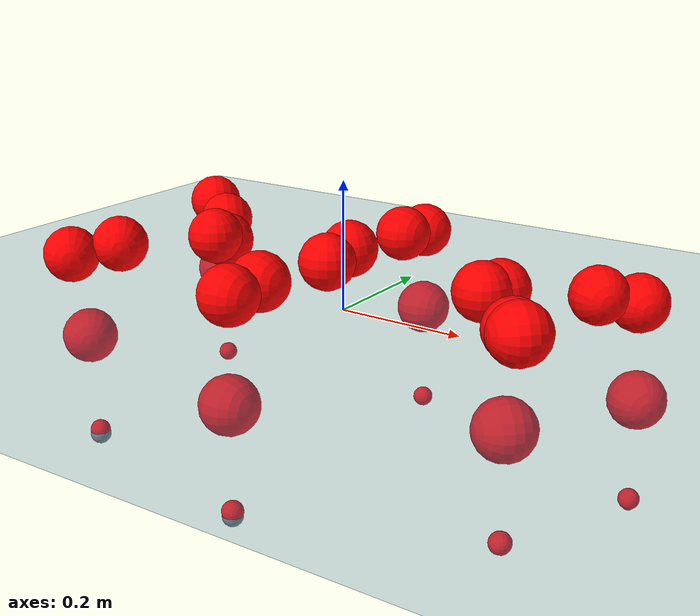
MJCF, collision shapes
<mujoco model="Golem">
  <compiler angle="radian" assetdir="assets" balanceinertia="true" inertiafromgeom="false"/>

  <option timestep="0.005" density="1.2" viscosity="2e-05"/>

  <size nkey="1"/>

  <visual>
    <quality shadowsize="8192"/>
    <map shadowclip="0.5"/>
  </visual>

  <default>
    <default class="/">
      <joint armature="0.01" damping="0.01" frictionloss="0.01"/>
      <geom contype="0" conaffinity="0" group="1" solref="-1000 -80"/>
      <site size="0.01 0.005 0.005" group="5"/>
      <general forcelimited="true" biastype="affine" gainprm="25" biasprm="0 -25 -0.5"/>
      <default class="visual">
        <geom type="mesh" group="2"/>
      </default>
      <default class="collision">
        <geom group="3"/>
      </default>
      <default class="foot">
        <geom size="0.01 0 0" condim="6" group="4" priority="1" solimp="0.015 1 0.01"/>
      </default>
      <default class="reward_collision_sphere">
        <geom group="5" rgba="1 0 0 1"/>
      </default>
    </default>
  </default>

  <asset>
    <texture type="skybox" colorspace="auto" name="//unnamed_texture_0" builtin="gradient" rgb1="0.95 0.95 0.95" rgb2="0.95 0.95 0.95" width="100" height="600"/>
    <texture type="2d" colorspace="auto" name="texplane" builtin="checker" rgb1="0.345 0.575 0.748" rgb2="0.345 0.575 0.748" markrgb="1 1 1" width="512" height="512"/>
    <material name="MatPlane" class="/" texture="texplane" texuniform="true" texrepeat="2 2" specular="0.9"/>
    <mesh name="body" class="/" file="body.stl" scale="0.001 0.001 0.001"/>
    <mesh name="coxa" class="/" file="coxa.stl" scale="0.001 0.001 0.001"/>
    <mesh name="femur" class="/" file="femur.stl" scale="0.001 0.001 0.001"/>
    <mesh name="tibia" class="/" file="tibia.stl" scale="0.001 0.001 0.001"/>
    <mesh name="tarsus" class="/" file="tarsus.stl" scale="0.001 0.001 0.001"/>
  </asset>

  <worldbody>
    <geom name="floor" class="/" size="100 100 0.125" type="plane" group="0" material="MatPlane"/>
    <light name="toplight_shadow" class="/" pos="0 0 5" dir="0.0990148 0.0990148 -0.990148" type="directional" ambient="0.04 0.04 0.04" diffuse="0.55 0.55 0.55" specular="0.12 0.12 0.12"/>
    <light name="toplight_fill" class="/" pos="0 0 5" dir="0.0990148 0.0990148 -0.990148" type="directional" castshadow="false" ambient="0.04 0.04 0.04" diffuse="0.3 0.3 0.3" specular="0.08 0.08 0.08"/>
    <body name="trunk" pos="-0.000577858 0.00599362 0.012501" quat="0.999974 0.00469617 -0.00530951 -0.00154983">
      <inertial pos="-0.00955016 0.00955341 -0.0127797" quat="0.999105 0.0401111 0.0106109 0.00826983" mass="6.62887" diaginertia="0.109043 0.00116351 0.0177066"/>
      <joint name="//unnamed_joint_0" type="free"/>
      <geom name="//unnamed_geom_1" class="/" pos="0 0 0.0720024" quat="1 0 0 0" type="mesh" rgba="0.9 0.9 0.9 1" mesh="body"/>
      <site name="imu" class="/" pos="0.239563 -0.0744705 0.0233177" size="0.0109878"/>
      <camera name="track" class="/" pos="0 -1.23782 0" quat="0.707107 0.707107 0 0" mode="trackcom"/>
      <camera name="ego_camera" class="/" pos="0.201812 0 0.112504" quat="-0.5 -0.5 0.5 0.5"/>
      <body name="coxa_RR" pos="-0.274718 -0.0470493 0.0708379" quat="0.388609 -0.000184477 -0.00648721 -0.92138">
        <inertial pos="-0.0136733 -0.00821711 0.011397" quat="0.998777 0.0277162 -0.0380075 -0.0152377" mass="0.234672" diaginertia="0.108563 0.000795682 0.0151282"/>
        <joint name="coxa_joint_RR" class="/" pos="0 0 0" axis="-0.0195935 0.0419779 -0.998926" range="-3.33477 3.30196" armature="0.00850366" damping="0.0420362" frictionloss="0.00598152"/>
        <geom name="//unnamed_geom_2" class="/" type="mesh" rgba="0.2 0.2 0.2 1" mesh="coxa"/>
        <geom name="//unnamed_geom_3" class="reward_collision_sphere" size="0.0439513" pos="-0.046572 0 0"/>
        <body name="femur_RR" pos="0.103971 0.0095224 -0.00107039" quat="0.498829 -0.493879 0.502186 0.505037">
          <inertial pos="2.07472e-05 -0.0175992 -0.0110897" quat="0.998112 -0.0276985 -0.0509291 -0.0203056" mass="0.300476" diaginertia="0.0918341 0.00122483 0.0217036"/>
          <joint name="femur_joint_RR" class="/" pos="0 0 0" axis="-0.0250347 -0.0143356 -0.999584" range="-3.30828 3.30896" armature="0.00338645" damping="0" frictionloss="0.0109169"/>
          <geom name="//unnamed_geom_4" class="/" type="mesh" rgba="0.9 0.9 0.9 1" mesh="femur"/>
          <geom name="//unnamed_geom_5" class="reward_collision_sphere" size="0.0439513"/>
          <body name="tibia_RR" pos="0.0121846 -0.0763182 -0.00500403" quat="-0.00015854 0.999998 0.0010265 0.00139968">
            <inertial pos="0.00154124 -0.0165649 -0.00635639" quat="0.999999 0.000782139 -0.000923835 0.000679666" mass="0.322347" diaginertia="0.110108 0.00109618 0.0222126"/>
            <joint name="tibia_joint_RR" class="/" pos="0 0 0" axis="0.00598581 0.0804952 0.996737" stiffness="0.0656985" range="-3.47257 3.00378" armature="0.0178496" damping="0.0575783" frictionloss="0.000835687"/>
            <geom name="//unnamed_geom_6" class="/" type="mesh" rgba="0.2 0.2 0.2 1" mesh="tibia"/>
            <geom name="//unnamed_geom_7" class="reward_collision_sphere" size="0.0439513"/>
            <body name="tarsus_RR" pos="0.142102 -0.0138601 0.0161662" quat="0.999985 -0.00115737 0.00512651 0.00181192">
              <inertial pos="0.0831092 0.00658068 -0.013198" quat="0.506677 0.477574 0.539699 0.473209" mass="0.317916" diaginertia="0.0996833 0.00119292 0.016603"/>
              <joint name="tarsus_joint_RR" class="/" pos="0 0 0" axis="0.061853 -0.00840664 0.99805" range="-2.91213 3.23096" armature="0.0161648" damping="0" frictionloss="0.00805079"/>
              <geom name="//unnamed_geom_8" class="/" type="mesh" rgba="0.9 0.9 0.9 1" mesh="tarsus"/>
              <geom name="foot_1" class="foot" size="0.0170389" pos="0.173869 0 0" quat="0 -0.707107 0 0.707107"/>
              <geom name="//unnamed_geom_10" class="reward_collision_sphere" size="0.0439513"/>
              <geom name="//unnamed_geom_11" class="reward_collision_sphere" size="0.0164817" pos="0.166883 0 0"/>
              <site name="foot_1" class="foot" pos="0.173869 0 0" quat="0 -0.707107 0 0.707107" size="0.0109878"/>
            </body>
          </body>
        </body>
      </body>
      <body name="coxa_RM" pos="-0.0181245 -0.0663187 0.0645497" quat="0.707978 -0.00276585 0.00182138 -0.706227">
        <inertial pos="-0.00418378 -0.00102232 0.015058" quat="0.996047 -0.0270358 0.0789527 0.0304138" mass="0.233397" diaginertia="0.0665264 0.00055643 0.0115412"/>
        <joint name="coxa_joint_RM" class="/" pos="0 0 0" axis="0.034455 0.0787709 -0.996297" stiffness="0.0525929" range="-3.13276 3.36034" armature="0.0152113" damping="0" frictionloss="0.00404393"/>
        <geom name="//unnamed_geom_12" class="/" type="mesh" rgba="0.2 0.2 0.2 1" mesh="coxa"/>
        <geom name="//unnamed_geom_13" class="reward_collision_sphere" size="0.0439513" pos="-0.046572 0 0"/>
        <body name="femur_RM" pos="0.106135 -0.00672797 0.010251" quat="0.499471 -0.50036 0.501382 0.498784">
          <inertial pos="-0.00283977 -0.0135604 -0.00213874" quat="0.999558 0.0202501 0.0142731 -0.0164562" mass="0.223876" diaginertia="0.105248 0.000925495 0.0200343"/>
          <joint name="femur_joint_RM" class="/" pos="0 0 0" axis="-0.00679094 -0.0120267 -0.999905" stiffness="0.0694956" range="-3.43088 2.92473" armature="0.00404708" damping="0.000286828" frictionloss="0.00231342"/>
          <geom name="//unnamed_geom_14" class="/" type="mesh" rgba="0.9 0.9 0.9 1" mesh="femur"/>
          <geom name="//unnamed_geom_15" class="reward_collision_sphere" size="0.0439513"/>
          <body name="tibia_RM" pos="0.000320663 -0.0683595 0.000599687" quat="0.000103 0.999997 -0.000937774 -0.00224641">
            <inertial pos="-0.00414143 0.00170739 -0.0140001" quat="0.999468 -0.0296158 -0.00964511 0.0097045" mass="0.211609" diaginertia="0.0942659 0.000934004 0.0205579"/>
            <joint name="tibia_joint_RM" class="/" pos="0 0 0" axis="0.0798148 -0.020291 0.996603" stiffness="0.000756324" range="-3.33274 2.87942" armature="0.0202426" damping="0" frictionloss="0.00192666"/>
            <geom name="//unnamed_geom_16" class="/" type="mesh" rgba="0.2 0.2 0.2 1" mesh="tibia"/>
            <geom name="//unnamed_geom_17" class="reward_collision_sphere" size="0.0439513"/>
            <body name="tarsus_RM" pos="0.155015 0.0149988 -0.00685674" quat="0.999978 0.00254313 -0.00250973 0.00561895">
              <inertial pos="0.0915411 0.00516225 -0.00259552" quat="0.495066 0.507215 0.506186 0.491342" mass="0.174191" diaginertia="0.0752025 0.000716702 0.0145559"/>
              <joint name="tarsus_joint_RM" class="/" pos="0 0 0" axis="0.00151653 0.047193 0.998885" range="-3.3207 3.27299" armature="0.0166528" damping="0" frictionloss="0.0071011"/>
              <geom name="//unnamed_geom_18" class="/" type="mesh" rgba="0.9 0.9 0.9 1" mesh="tarsus"/>
              <geom name="foot_2" class="foot" size="0.0159447" pos="0.173869 0 0" quat="0 -0.707107 0 0.707107"/>
              <geom name="//unnamed_geom_20" class="reward_collision_sphere" size="0.0439513"/>
              <geom name="//unnamed_geom_21" class="reward_collision_sphere" size="0.0164817" pos="0.166883 0 0"/>
              <site name="foot_2" class="foot" pos="0.173869 0 0" quat="0 -0.707107 0 0.707107" size="0.0109878"/>
            </body>
          </body>
        </body>
      </body>
      <body name="coxa_RF" pos="0.266689 -0.0347108 0.0578818" quat="0.923972 -9.02989e-05 -6.41736e-05 -0.382461">
        <inertial pos="0.0168506 -0.00445235 0.0139177" quat="0.998137 0.0289518 0.0398452 -0.0359972" mass="0.247496" diaginertia="0.0705162 0.000648768 0.014778"/>
        <joint name="coxa_joint_RF" class="/" pos="0 0 0" axis="0.0236758 0.0258705 -0.999385" stiffness="0.0713094" range="-3.22443 3.38537" armature="0.0140335" damping="0" frictionloss="0.00222634"/>
        <geom name="//unnamed_geom_22" class="/" type="mesh" rgba="0.2 0.2 0.2 1" mesh="coxa"/>
        <geom name="//unnamed_geom_23" class="reward_collision_sphere" size="0.0439513" pos="-0.046572 0 0"/>
        <body name="femur_RF" pos="0.0758755 0.00532331 -0.011468" quat="0.495578 -0.498397 0.50046 0.505513">
          <inertial pos="-0.00566857 -0.00300829 0.0071982" quat="0.998418 -0.0375084 0.00931105 -0.0408421" mass="0.253523" diaginertia="0.100397 0.00111465 0.020879"/>
          <joint name="femur_joint_RF" class="/" pos="0 0 0" axis="-0.00290821 -0.0437382 -0.999039" range="-3.34475 3.11272" armature="0.00761681" damping="0.0211107" frictionloss="0.00813205"/>
          <geom name="//unnamed_geom_24" class="/" type="mesh" rgba="0.9 0.9 0.9 1" mesh="femur"/>
          <geom name="//unnamed_geom_25" class="reward_collision_sphere" size="0.0439513"/>
          <body name="tibia_RF" pos="-0.0187039 -0.0619962 -0.014917" quat="-0.00408135 0.999989 0.00126552 0.00177599">
            <inertial pos="0.000552198 0.0162683 0.0144323" quat="0.996884 0.0540566 -0.0273869 0.050508" mass="0.285529" diaginertia="0.123202 0.00120998 0.0173289"/>
            <joint name="tibia_joint_RF" class="/" pos="0 0 0" axis="-0.0532807 -0.057629 0.996915" stiffness="0.0901842" range="-2.92598 3.06032" armature="0.0088448" damping="0.0391244" frictionloss="0.0175032"/>
            <geom name="//unnamed_geom_26" class="/" type="mesh" rgba="0.2 0.2 0.2 1" mesh="tibia"/>
            <geom name="//unnamed_geom_27" class="reward_collision_sphere" size="0.0439513"/>
            <body name="tarsus_RF" pos="0.126527 0.00831902 0.0173132" quat="1 2.58554e-05 -3.85021e-05 -0.000190113">
              <inertial pos="0.0860303 -0.00607371 0.00480806" quat="0.493511 0.529685 0.506798 0.468014" mass="0.285076" diaginertia="0.114961 0.00121664 0.018897"/>
              <joint name="tarsus_joint_RF" class="/" pos="0 0 0" axis="-0.0519874 0.0725371 0.99601" range="-3.02616 3.27505" armature="0.0161853" damping="0.00420564" frictionloss="0.00466454"/>
              <geom name="//unnamed_geom_28" class="/" type="mesh" rgba="0.9 0.9 0.9 1" mesh="tarsus"/>
              <geom name="foot_3" class="foot" size="0.00664757" pos="0.173869 0 0" quat="0 -0.707107 0 0.707107"/>
              <geom name="//unnamed_geom_30" class="reward_collision_sphere" size="0.0439513"/>
              <geom name="//unnamed_geom_31" class="reward_collision_sphere" size="0.0164817" pos="0.166883 0 0"/>
              <site name="foot_3" class="foot" pos="0.173869 0 0" quat="0 -0.707107 0 0.707107" size="0.0109878"/>
            </body>
          </body>
        </body>
      </body>
      <body name="coxa_LR" pos="-0.278897 0.0508807 0.0552599" quat="0.386909 -0.00571148 -0.00232582 0.922097">
        <inertial pos="0.0107102 -0.0145233 0.0152459" quat="0.999454 -0.00166947 0.0308159 -0.0118314" mass="0.256187" diaginertia="0.0916014 0.000969557 0.0167843"/>
        <joint name="coxa_joint_LR" class="/" pos="0 0 0" axis="0.0332593 -0.0610906 -0.997578" range="-2.93521 2.81734" armature="0.0120603" damping="0.00170412" frictionloss="0.00364016"/>
        <geom name="//unnamed_geom_32" class="/" type="mesh" rgba="0.2 0.2 0.2 1" mesh="coxa"/>
        <geom name="//unnamed_geom_33" class="reward_collision_sphere" size="0.0439513" pos="-0.046572 0 0"/>
        <body name="femur_LR" pos="0.0926566 -0.0111583 0.000590277" quat="0.503443 -0.499846 0.496804 0.499885">
          <inertial pos="-0.0048221 -0.0132733 -0.00838799" quat="0.99642 0.00661143 0.0370328 -0.0757094" mass="0.32642" diaginertia="0.0812901 0.00109217 0.0227302"/>
          <joint name="femur_joint_LR" class="/" pos="0 0 0" axis="-0.090549 0.0266297 0.995536" range="-2.92894 2.95329" armature="0.0017253" damping="0" frictionloss="0.00940893"/>
          <geom name="//unnamed_geom_34" class="/" type="mesh" rgba="0.9 0.9 0.9 1" mesh="femur"/>
          <geom name="//unnamed_geom_35" class="reward_collision_sphere" size="0.0439513"/>
          <body name="tibia_LR" pos="-0.0148054 -0.0744517 0.0137239" quat="-0.0033239 0.99999 0.000908475 -0.0027722">
            <inertial pos="0.0109356 -0.00876384 -0.0142966" quat="0.997865 0.0476438 -0.0123234 0.0429339" mass="0.194035" diaginertia="0.0755133 0.00072206 0.0184252"/>
            <joint name="tibia_joint_LR" class="/" pos="0 0 0" axis="-0.000582868 0.0201424 -0.999797" range="-3.4787 2.86979" armature="0.0195683" damping="0" frictionloss="0.0105694"/>
            <geom name="//unnamed_geom_36" class="/" type="mesh" rgba="0.2 0.2 0.2 1" mesh="tibia"/>
            <geom name="//unnamed_geom_37" class="reward_collision_sphere" size="0.0439513"/>
            <body name="tarsus_LR" pos="0.130596 0.0111368 0.00550135" quat="1 -0.000361918 -0.000362399 0.00023334">
              <inertial pos="0.0965333 0.0155116 -0.00646858" quat="0.501329 0.499745 0.499604 0.499319" mass="0.353641" diaginertia="0.0994458 0.00077467 0.0171785"/>
              <joint name="tarsus_joint_LR" class="/" pos="0 0 0" axis="0.000205248 -0.000851256 -1" range="-3.00542 2.89819" armature="0.0110087" damping="0.0518757" frictionloss="0.0174929"/>
              <geom name="//unnamed_geom_38" class="/" type="mesh" rgba="0.9 0.9 0.9 1" mesh="tarsus"/>
              <geom name="foot_4" class="foot" size="0.00609986" pos="0.173869 0 0" quat="0.707107 0 -0.707107 0"/>
              <geom name="//unnamed_geom_40" class="reward_collision_sphere" size="0.0439513"/>
              <geom name="//unnamed_geom_41" class="reward_collision_sphere" size="0.0164817" pos="0.166883 0 0"/>
              <site name="foot_4" class="foot" pos="0.173869 0 0" quat="0.707107 0 -0.707107 0" size="0.0109878"/>
            </body>
          </body>
        </body>
      </body>
      <body name="coxa_LM" pos="-0.0146135 0.0818026 0.0718295" quat="0.705171 -0.00256885 0.000192235 0.709033">
        <inertial pos="0.00142668 -0.00344674 0.0166927" quat="0.999501 -0.0233995 0.00436285 -0.0207652" mass="0.26788" diaginertia="0.0708772 0.000842636 0.0165405"/>
        <joint name="coxa_joint_LM" class="/" pos="0 0 0" axis="0.0306023 -0.0476742 -0.998394" range="-3.01561 3.20138" armature="0.00582382" damping="0.0759703" frictionloss="0.0114947"/>
        <geom name="//unnamed_geom_42" class="/" type="mesh" rgba="0.2 0.2 0.2 1" mesh="coxa"/>
        <geom name="//unnamed_geom_43" class="reward_collision_sphere" size="0.0439513" pos="-0.046572 0 0"/>
        <body name="femur_LM" pos="0.0916562 -0.0112091 -0.00686761" quat="0.501152 -0.498535 0.500108 0.500202">
          <inertial pos="0.0135447 0.000522772 0.0181658" quat="0.997642 -0.0271812 0.0584495 0.0235836" mass="0.276422" diaginertia="0.101369 0.000956399 0.0195043"/>
          <joint name="femur_joint_LM" class="/" pos="0 0 0" axis="0.0528521 -0.0199473 0.998403" range="-3.28787 3.49415" armature="0.0169915" damping="0.00209599" frictionloss="0.0191949"/>
          <geom name="//unnamed_geom_44" class="/" type="mesh" rgba="0.9 0.9 0.9 1" mesh="femur"/>
          <geom name="//unnamed_geom_45" class="reward_collision_sphere" size="0.0439513"/>
          <body name="tibia_LM" pos="0.00892894 -0.0643763 -0.00263051" quat="-0.00386249 0.999985 -0.00336515 -0.00172763">
            <inertial pos="-0.0100807 -0.00229582 0.00157232" quat="0.999538 -0.00807185 0.0142122 0.025625" mass="0.280038" diaginertia="0.109656 0.00114272 0.0226376"/>
            <joint name="tibia_joint_LM" class="/" pos="0 0 0" axis="0.043923 -0.0602821 -0.997215" range="-3.43198 3.35936" armature="0.0011926" damping="0.0463614" frictionloss="0.00301963"/>
            <geom name="//unnamed_geom_46" class="/" type="mesh" rgba="0.2 0.2 0.2 1" mesh="tibia"/>
            <geom name="//unnamed_geom_47" class="reward_collision_sphere" size="0.0439513"/>
            <body name="tarsus_LM" pos="0.135379 -0.000883642 -0.00126102" quat="1 0.000295456 -0.000639648 -0.000158792">
              <inertial pos="0.103445 0.00715876 -0.00228199" quat="0.473668 0.477262 0.542006 0.504072" mass="0.338087" diaginertia="0.121519 0.00137967 0.024662"/>
              <joint name="tarsus_joint_LM" class="/" pos="0 0 0" axis="0.00926556 -0.0580141 -0.998273" range="-3.1213 3.16172" armature="0.0152292" damping="0" frictionloss="0.00132263"/>
              <geom name="//unnamed_geom_48" class="/" type="mesh" rgba="0.9 0.9 0.9 1" mesh="tarsus"/>
              <geom name="foot_5" class="foot" size="0.00622512" pos="0.173869 0 0" quat="0.707107 0 -0.707107 0"/>
              <geom name="//unnamed_geom_50" class="reward_collision_sphere" size="0.0439513"/>
              <geom name="//unnamed_geom_51" class="reward_collision_sphere" size="0.0164817" pos="0.166883 0 0"/>
              <site name="foot_5" class="foot" pos="0.173869 0 0" quat="0.707107 0 -0.707107 0" size="0.0109878"/>
            </body>
          </body>
        </body>
      </body>
      <body name="coxa_LF" pos="0.277338 0.0661211 0.0537186" quat="0.923355 0.00391429 -0.00088592 0.383927">
        <inertial pos="0.0165334 0.0182721 0.0130492" quat="0.999183 0.0363811 -0.000246945 -0.0175838" mass="0.323689" diaginertia="0.10712 0.00131254 0.0175309"/>
        <joint name="coxa_joint_LF" class="/" pos="0 0 0" axis="0.0727902 0.0393155 -0.996572" stiffness="0.0163058" range="-2.90946 3.1383" armature="0.00678759" damping="0" frictionloss="0.0185976"/>
        <geom name="//unnamed_geom_52" class="/" type="mesh" rgba="0.2 0.2 0.2 1" mesh="coxa"/>
        <geom name="//unnamed_geom_53" class="reward_collision_sphere" size="0.0439513" pos="-0.046572 0 0"/>
        <body name="femur_LF" pos="0.0949283 -0.0159793 -0.0154724" quat="0.504014 -0.50203 0.498829 0.495082">
          <inertial pos="-0.00081947 0.0117766 -0.00833357" quat="0.999998 0.00026416 -0.00143434 0.00142246" mass="0.283893" diaginertia="0.130662 0.00107112 0.0216084"/>
          <joint name="femur_joint_LF" class="/" pos="0 0 0" axis="-0.0794716 0.014482 0.996732" range="-2.92987 2.85663" armature="0.00714735" damping="0.00843715" frictionloss="0.0125482"/>
          <geom name="//unnamed_geom_54" class="/" type="mesh" rgba="0.9 0.9 0.9 1" mesh="femur"/>
          <geom name="//unnamed_geom_55" class="reward_collision_sphere" size="0.0439513"/>
          <body name="tibia_LF" pos="0.0171946 -0.0626746 -0.000736319" quat="0.002161 0.999984 0.00259654 0.00444488">
            <inertial pos="-0.0120855 -0.0159741 0.0110704" quat="0.999775 -0.00974333 0.0106828 0.0154914" mass="0.245365" diaginertia="0.114368 0.00103281 0.022592"/>
            <joint name="tibia_joint_LF" class="/" pos="0 0 0" axis="0.0460128 0.0427925 -0.998024" stiffness="0.0812912" range="-3.22389 3.423" armature="0.0155157" damping="0.062429" frictionloss="0.00669885"/>
            <geom name="//unnamed_geom_56" class="/" type="mesh" rgba="0.2 0.2 0.2 1" mesh="tibia"/>
            <geom name="//unnamed_geom_57" class="reward_collision_sphere" size="0.0439513"/>
            <body name="tarsus_LF" pos="0.147222 -8.9817e-05 0.013993" quat="0.999999 0.00100104 9.05399e-05 -0.000625211">
              <inertial pos="0.111688 -0.00710547 0.00778223" quat="0.444739 0.550739 0.536999 0.45883" mass="0.301734" diaginertia="0.086638 0.000934671 0.0194215"/>
              <joint name="tarsus_joint_LF" class="/" pos="0 0 0" axis="-0.00440689 -0.0945307 -0.995512" range="-3.3521 3.40524" armature="0.0112543" damping="0.0766111" frictionloss="0.0166662"/>
              <geom name="//unnamed_geom_58" class="/" type="mesh" rgba="0.9 0.9 0.9 1" mesh="tarsus"/>
              <geom name="foot_6" class="foot" size="0.0115178" pos="0.173869 0 0" quat="0.707107 0 -0.707107 0"/>
              <geom name="//unnamed_geom_60" class="reward_collision_sphere" size="0.0439513"/>
              <geom name="//unnamed_geom_61" class="reward_collision_sphere" size="0.0164817" pos="0.166883 0 0"/>
              <site name="foot_6" class="foot" pos="0.173869 0 0" quat="0.707107 0 -0.707107 0" size="0.0109878"/>
            </body>
          </body>
        </body>
      </body>
    </body>
  </worldbody>

  <contact>
    <pair class="/" geom1="floor" geom2="foot_1" name="//unnamed_contact_0"/>
    <pair class="/" geom1="floor" geom2="foot_2" name="//unnamed_contact_1"/>
    <pair class="/" geom1="floor" geom2="foot_3" name="//unnamed_contact_2"/>
    <pair class="/" geom1="floor" geom2="foot_4" name="//unnamed_contact_3"/>
    <pair class="/" geom1="floor" geom2="foot_5" name="//unnamed_contact_4"/>
    <pair class="/" geom1="floor" geom2="foot_6" name="//unnamed_contact_5"/>
  </contact>

  <actuator>
    <general name="coxa_joint_RR" class="/" joint="coxa_joint_RR" forcerange="-8.23664 8.23664" gainprm="24.9649" biasprm="0 -24.9649 -0.424936"/>
    <general name="femur_joint_RR" class="/" joint="femur_joint_RR" forcerange="-5.69949 5.69949" gainprm="24.9649" biasprm="0 -24.9649 -0.424936"/>
    <general name="tibia_joint_RR" class="/" joint="tibia_joint_RR" forcerange="-8.54372 8.54372" gainprm="24.9649" biasprm="0 -24.9649 -0.424936"/>
    <general name="tarsus_joint_RR" class="/" joint="tarsus_joint_RR" forcerange="-3.65778 3.65778" gainprm="24.9649" biasprm="0 -24.9649 -0.424936"/>
    <general name="coxa_joint_RM" class="/" joint="coxa_joint_RM" forcerange="-10.8447 10.8447" gainprm="24.9649" biasprm="0 -24.9649 -0.424936"/>
    <general name="femur_joint_RM" class="/" joint="femur_joint_RM" forcerange="-3.62589 3.62589" gainprm="24.9649" biasprm="0 -24.9649 -0.424936"/>
    <general name="tibia_joint_RM" class="/" joint="tibia_joint_RM" forcerange="-5.59686 5.59686" gainprm="24.9649" biasprm="0 -24.9649 -0.424936"/>
    <general name="tarsus_joint_RM" class="/" joint="tarsus_joint_RM" forcerange="-5.06923 5.06923" gainprm="24.9649" biasprm="0 -24.9649 -0.424936"/>
    <general name="coxa_joint_RF" class="/" joint="coxa_joint_RF" forcerange="-12.3743 12.3743" gainprm="24.9649" biasprm="0 -24.9649 -0.424936"/>
    <general name="femur_joint_RF" class="/" joint="femur_joint_RF" forcerange="-6.35706 6.35706" gainprm="24.9649" biasprm="0 -24.9649 -0.424936"/>
    <general name="tibia_joint_RF" class="/" joint="tibia_joint_RF" forcerange="-5.36393 5.36393" gainprm="24.9649" biasprm="0 -24.9649 -0.424936"/>
    <general name="tarsus_joint_RF" class="/" joint="tarsus_joint_RF" forcerange="-6.23465 6.23465" gainprm="24.9649" biasprm="0 -24.9649 -0.424936"/>
    <general name="coxa_joint_LR" class="/" joint="coxa_joint_LR" forcerange="-7.41196 7.41196" gainprm="24.9649" biasprm="0 -24.9649 -0.424936"/>
    <general name="femur_joint_LR" class="/" joint="femur_joint_LR" forcerange="-8.141 8.141" gainprm="24.9649" biasprm="0 -24.9649 -0.424936"/>
    <general name="tibia_joint_LR" class="/" joint="tibia_joint_LR" forcerange="-9.44966 9.44966" gainprm="24.9649" biasprm="0 -24.9649 -0.424936"/>
    <general name="tarsus_joint_LR" class="/" joint="tarsus_joint_LR" forcerange="-6.92419 6.92419" gainprm="24.9649" biasprm="0 -24.9649 -0.424936"/>
    <general name="coxa_joint_LM" class="/" joint="coxa_joint_LM" forcerange="-10.076 10.076" gainprm="24.9649" biasprm="0 -24.9649 -0.424936"/>
    <general name="femur_joint_LM" class="/" joint="femur_joint_LM" forcerange="-9.94551 9.94551" gainprm="24.9649" biasprm="0 -24.9649 -0.424936"/>
    <general name="tibia_joint_LM" class="/" joint="tibia_joint_LM" forcerange="-8.00961 8.00961" gainprm="24.9649" biasprm="0 -24.9649 -0.424936"/>
    <general name="tarsus_joint_LM" class="/" joint="tarsus_joint_LM" forcerange="-5.14092 5.14092" gainprm="24.9649" biasprm="0 -24.9649 -0.424936"/>
    <general name="coxa_joint_LF" class="/" joint="coxa_joint_LF" forcerange="-11.3437 11.3437" gainprm="24.9649" biasprm="0 -24.9649 -0.424936"/>
    <general name="femur_joint_LF" class="/" joint="femur_joint_LF" forcerange="-7.77084 7.77084" gainprm="24.9649" biasprm="0 -24.9649 -0.424936"/>
    <general name="tibia_joint_LF" class="/" joint="tibia_joint_LF" forcerange="-7.48913 7.48913" gainprm="24.9649" biasprm="0 -24.9649 -0.424936"/>
    <general name="tarsus_joint_LF" class="/" joint="tarsus_joint_LF" forcerange="-7.64026 7.64026" gainprm="24.9649" biasprm="0 -24.9649 -0.424936"/>
  </actuator>

  <sensor>
    <gyro site="imu" name="imu_angular_velocity"/>
    <velocimeter site="imu" name="imu_linear_velocity"/>
    <framelinvel objtype="site" objname="foot_1" name="foot_1_global_linear_velocity"/>
    <framelinvel objtype="site" objname="foot_2" name="foot_2_global_linear_velocity"/>
    <framelinvel objtype="site" objname="foot_3" name="foot_3_global_linear_velocity"/>
    <framelinvel objtype="site" objname="foot_4" name="foot_4_global_linear_velocity"/>
    <framelinvel objtype="site" objname="foot_5" name="foot_5_global_linear_velocity"/>
    <framelinvel objtype="site" objname="foot_6" name="foot_6_global_linear_velocity"/>
  </sensor>

  <keyframe>
    <key name="home" qpos="0 0 0.1457 1 0 0 0 0 0 0 0 0 0 0 0 0 0 0 0 0 0 0 0 0 0 0 0 0 0 0 0"/>
  </keyframe>
</mujoco>
